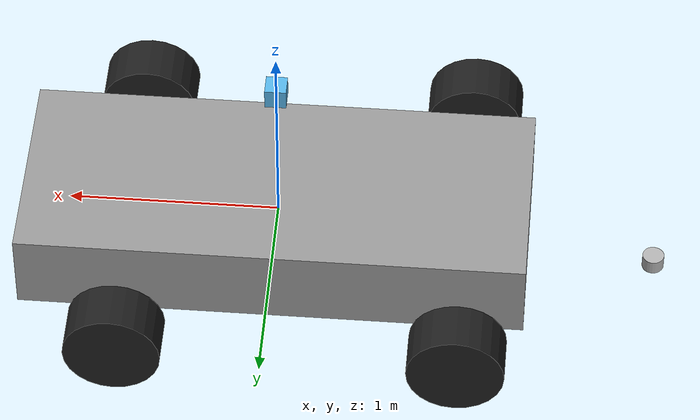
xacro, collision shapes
<?xml version="1.0"?>

<robot name="car_combine" xmlns:xacro="http://wiki.ros.org/xacro">
    <xacro:property name="PI" value="3.1415926535897931"/>
    <xacro:property name="base_link" value="car_link"/>
    <xacro:property name="camera_link" value="car_link"/>
    <xacro:property name="laser_link" value="car_link"/>
    <xacro:property name="imu_link" value="car_link"/>
    <xacro:include filename="materials.xacro" />
    <xacro:include filename="car.xacro" />
    <xacro:include filename="laser-32.xacro" />
    <xacro:include filename="camera.xacro" />
    <xacro:include filename="$(find robot_description)/urdf/plugin.gazebo" />
</robot>

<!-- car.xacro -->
<robot name="car" xmlns:xacro="http://www.ros.org/wiki/xacro">

    <xacro:property name="m_wheel" value="10"/>
    <xacro:property name="m_string" value="2.5"/>
    <xacro:property name="m_car" value="200"/>
    <xacro:property name="wheel_r" value="0.2286"/>
    <xacro:property name="wheel_h" value="0.23"/>
    <xacro:property name="string_r" value="0.05"/>
    <xacro:property name="car_x" value="2.4"/>
    <xacro:property name="car_y" value="1"/>
    <xacro:property name="car_z" value="0.4"/>
    <xacro:macro name="wheel_joint" params="parent child x y z">
        <joint name="${child}_joint" type="continuous">
            <parent link="${parent}"/>
            <child link="${child}"/>
            <origin rpy="${PI/2}  0      0" xyz="${x} ${y} ${z}"/>
            <axis xyz="0  0  1"/>
            <limit effort="400" velocity="10" />
        </joint>
    </xacro:macro>

    <xacro:macro name="string_joint" params="parent child x y z">
        <joint name="${child}_joint" type="revolute">
            <parent link="${parent}"/>
            <child link="${child}"/>
            <origin rpy="0 0 0" xyz="${x} ${y} ${z}"/>
            <axis xyz="0  0  1"/>
            <limit effort="100" lower="${-90*PI/180}" upper="${90*PI/180}" velocity="10"/>
        </joint>
    </xacro:macro>

    <xacro:macro name="wheel" params="name">
        <link name="${name}">
            <inertial>
                <mass value="${m_wheel}"/>
                <origin rpy="0  0  0" xyz="0  0  0"/>
                <inertia    ixx="${m_wheel/12*(3*wheel_r*wheel_r+wheel_h*wheel_h)}" ixy="0"
                                    iyy="${m_wheel/12*(3*wheel_r*wheel_r+wheel_h*wheel_h)}" ixz="0"
                                    izz="${m_wheel*wheel_r*wheel_r/2}"      iyz="0" />
            </inertial>
            <collision name="collision">
                <origin rpy="0  0  0" xyz="0  0  0"/>
                <geometry>
                    <cylinder length="${wheel_h}" radius="${wheel_r}"/>
                </geometry>
            </collision>
            <visual name="visual">
                <origin rpy="0  0  0" xyz="0  0  0"/>
                <geometry>
                    <cylinder length="${wheel_h}" radius="${wheel_r}"/>
                </geometry>
                <material name="black"/>
            </visual>
        </link>
    </xacro:macro>

    <xacro:macro name="string" params="name">
        <link name="${name}">
            <inertial>
                <mass value="${m_string}"/>
                <origin rpy="0  0  0" xyz="0  0  0"/>
                <inertia    ixx="${2*m_string*string_r*string_r/5}" ixy="0"
                                    iyy="${2*m_string*string_r*string_r/5}" ixz="0"
                                    izz="${2*m_string*string_r*string_r/5}"  iyz="0" />
            </inertial>
            <collision name="collision">
                <origin rpy="0  0  0" xyz="0  0  0"/>
                <geometry>
                    <sphere radius="${string_r}"/>
                </geometry>
            </collision>
            <visual name="visual">
                <origin rpy="0  0  0" xyz="0  0  0"/>
                <geometry>
                    <sphere radius="${string_r}"/>
                </geometry>
            </visual>
        </link>
    </xacro:macro>

    <xacro:macro name="motor" params="name ">
        <transmission name="${name}_tran">
            <type>transmission_interface/SimpleTransmission</type>
            <joint name="${name}_joint">
                <hardwareInterface>hardware_interface/EffortJointInterface</hardwareInterface>
            </joint>
            <actuator name="${name}_motor">
                <hardwareInterface>hardware_interface/EffortJointInterface</hardwareInterface>
                <mechanicalReduction>1</mechanicalReduction>
            </actuator>
        </transmission>
    </xacro:macro>

    <link name="car_base">
        <inertial>
            <mass value="${m_car}"/>
            <origin rpy="0  0  0" xyz="0  0  0"/>
            <inertia    ixx="${m_car/12*(car_y*car_y+car_z*car_z)}" ixy="0"
                                iyy="${m_car/12*(car_x*car_x+car_z*car_z)}" ixz="0"
                                izz="${m_car/12*(car_x*car_x+car_y*car_y)}" iyz="0" />
        </inertial>
        <collision name="collision">
            <origin rpy="0  0  0" xyz="0 0 0"/>
            <geometry>
                <box size="${car_x} ${car_y} ${car_z}"/>
            </geometry>
        </collision>
        <visual name="visual">
            <origin rpy="0  0  0" xyz="0 0 0"/>
            <geometry>
                <box size="${car_x} ${car_y} ${car_z}"/>
            </geometry>
            <material name="grey"/>
        </visual>
    </link>

    <xacro:wheel name="left_front"/>
    <xacro:wheel name="right_front"/>
    <xacro:wheel name="left_rear"/>
    <xacro:wheel name="right_rear"/>

    <xacro:string name="left_string"/>
    <xacro:string name="right_string"/>

    <xacro:wheel_joint parent="left_string" child="left_front"  x="0" y="0" z="0"/>
    <xacro:wheel_joint parent="right_string" child="right_front" x="0" y="0" z="0"/>
    <xacro:wheel_joint parent="car_base" child="left_rear" x="0.7" y="-0.8" z="-0.0714"/>
    <xacro:wheel_joint parent="car_base" child="right_rear" x="0.7" y="0.8" z="-0.0714"/>

    <xacro:string_joint parent="car_base" child="left_string"    x="-0.9" y="-0.8" z="-0.0714"/>
    <xacro:string_joint parent="car_base" child="right_string" x="-0.9" y="0.8" z="-0.0714"/>

    <joint name="laser_joint" type="fixed">
        <parent link="car_base"/>
        <child link="laser_base"/>
        <origin rpy="0 0 ${PI}" xyz="-1.8  0 -0.25"/>
    </joint>

    <joint name="camera_joint" type="fixed">
        <parent link="car_base"/>
        <child link="camera_base"/>
        <origin rpy="0  0 ${PI}" xyz="0 0 0.8"/>
    </joint>

    <xacro:motor name="left_string"/>
    <xacro:motor name="right_string"/>
    <xacro:motor name="left_front"/>
    <xacro:motor name="right_front"/>
    <xacro:motor name="left_rear"/>
    <xacro:motor name="right_rear"/>

</robot>

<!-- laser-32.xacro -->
<robot name="laser-32" xmlns:xacro="http://www.ros.org/wiki/xacro" >

  <link name="laser_base">
    <inertial>
      <mass value="0.83"/>
      <origin xyz="0 0 0.03585"/>
      <inertia ixx="${(0.83 * (3.0*0.0516*0.0516 + 0.0717*0.0717)) / 12.0}" ixy="0" ixz="0"
        iyy="${(0.83 * (3.0*0.0516*0.0516 + 0.0717*0.0717)) / 12.0}" iyz="0"
        izz="${0.5 * 0.83 * (0.0516*0.0516)}"/>
    </inertial>
    <visual>
      <geometry>
        <mesh filename="package://robot_description/meshes/VLP32_base_1.dae" />
      </geometry>
    </visual>
    <visual>
      <geometry>
        <mesh filename="package://robot_description/meshes/VLP32_base_2.dae" />
      </geometry>
    </visual>
    <collision>
      <origin rpy="0 0 0" xyz="0 0 0.03585"/>
      <geometry>
        <cylinder radius="0.0516" length="0.0717"/>
      </geometry>
    </collision>
  </link>

  <link name="laser_center">
    <inertial>
      <mass value="0.01"/>
      <origin xyz="0 0 0"/>
      <inertia ixx="1e-7" ixy="0" ixz="0" iyy="1e-7" iyz="0" izz="1e-7"/>
    </inertial>
    <visual>
      <origin xyz="0 0 -0.0377" />
      <geometry>
        <mesh filename="package://robot_description/meshes/VLP32_scan.dae" />
      </geometry>
    </visual>
  </link>

  <joint name="laser_base_joint" type="fixed" >
    <origin xyz="0 0 0.0377" rpy="0 0 0" />
    <parent link="laser_base" />
    <child link="laser_center"/>
  </joint>

</robot>

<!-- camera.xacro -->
<robot name="camera" xmlns:xacro="http://www.ros.org/wiki/xacro">

    <link name="camera_base">
        <inertial>
            <mass value="0.1"/>
            <origin rpy="0  0  0" xyz="0  0  0"/>
            <inertia ixx="0.000166667" ixy="0" ixz="0" iyy="0.000166667" iyz="0" izz="0.000166667"/>
        </inertial>

        <collision name="collision">
            <origin rpy="0  0  0" xyz="0 0 0"/>
            <geometry>
                <box size="0.1 0.1 0.1"/>
            </geometry>
        </collision>

        <visual name="visual">
            <origin rpy="0  0  0" xyz="0 0 0"/>
            <geometry>
                <box size="0.1 0.1 0.1"/>
            </geometry>
        </visual>
    </link>

</robot>
